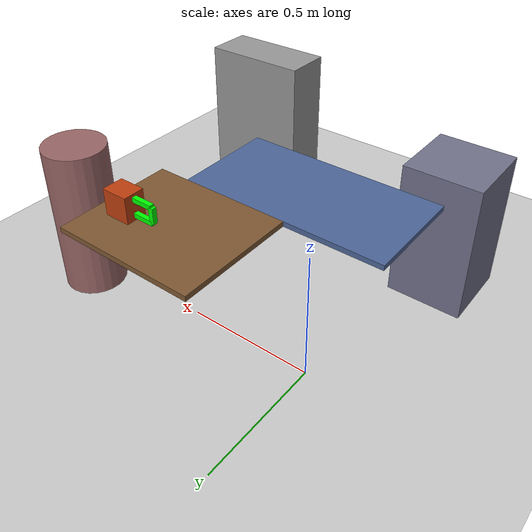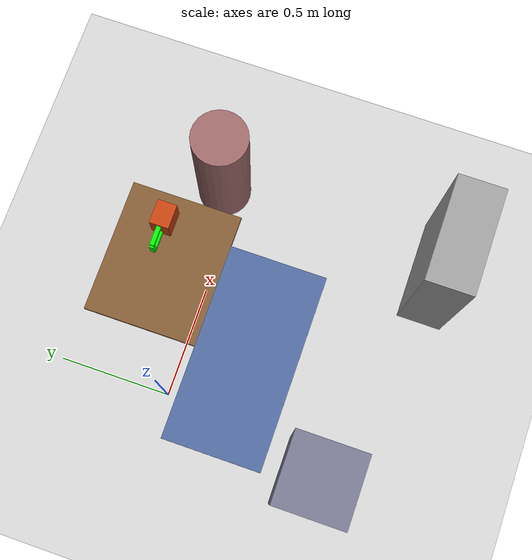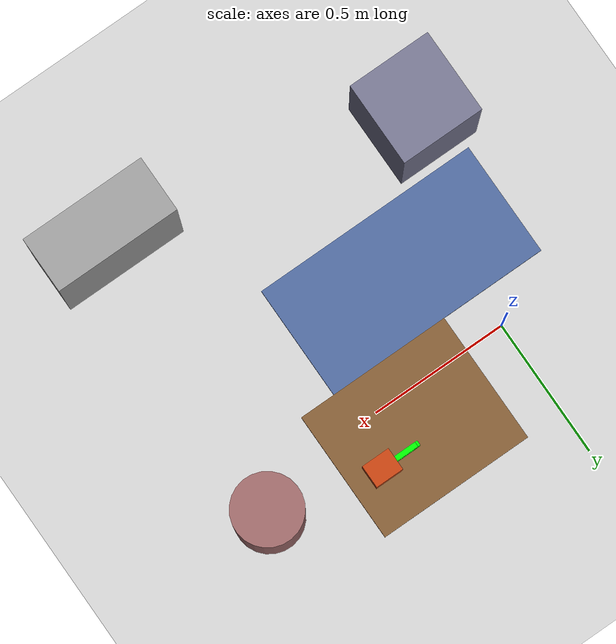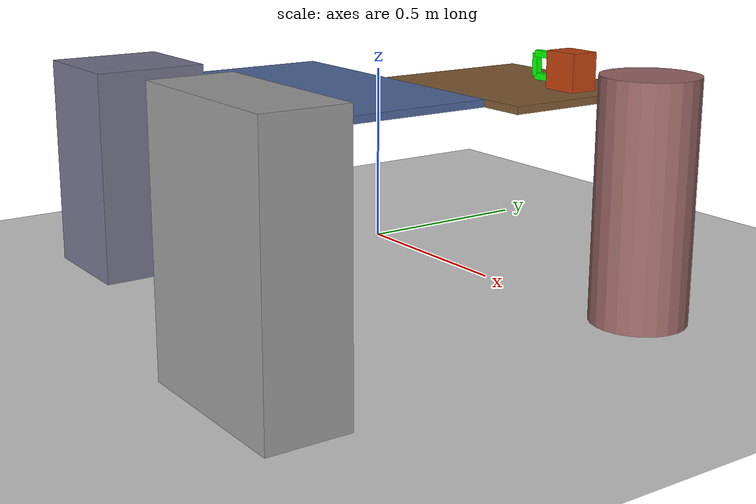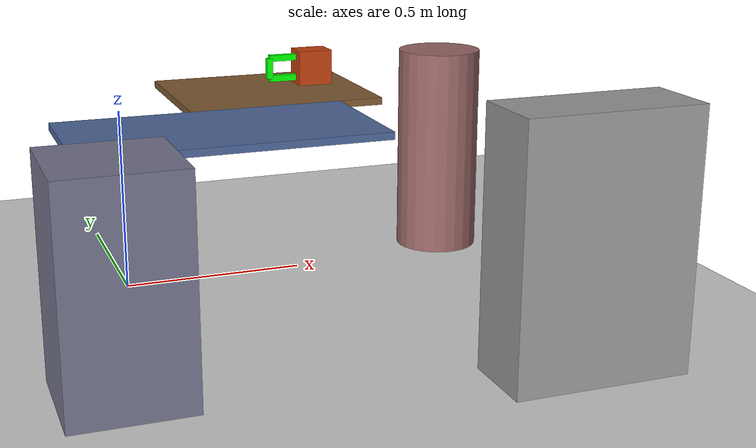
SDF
<?xml version="1.0"?>
<sdf version="1.6">
  <world name="pick_transport_obstacle">
    <include><uri>model://sun</uri></include>
    <include><uri>model://ground_plane</uri></include>
    <physics name="ode" type="ode">
      <max_step_size>0.005</max_step_size>
      <real_time_update_rate>200</real_time_update_rate>
      <ode><solver><type>quick</type><iters>100</iters><sor>1.0</sor></solver></ode>
    </physics>
    <gravity>0 0 -9.81</gravity>
    <plugin name="gazebo_ros_state" filename="libgazebo_ros_state.so">
      <ros><namespace>/gazebo</namespace></ros>
      <update_rate>50</update_rate>
    </plugin>

    <!-- Keep base task layout unchanged for safe comparison with the original scene. -->
    <model name="pickup_table">
      <static>true</static>
      <pose>0.45 0.13 0.496 0 0 0</pose>
      <link name="link">
        <collision name="collision"><geometry><box><size>0.55 0.46 0.02</size></box></geometry></collision>
        <visual name="visual"><geometry><box><size>0.55 0.46 0.02</size></box></geometry>
          <material><ambient>0.35 0.25 0.15 1</ambient><diffuse>0.5 0.35 0.2 1</diffuse></material></visual>
      </link>
    </model>

    <model name="drop_table">
      <static>true</static>
      <pose>0.20 -0.30 0.496 0 0 0</pose>
      <link name="link">
        <collision name="collision"><geometry><box><size>0.80 0.40 0.02</size></box></geometry></collision>
        <visual name="visual"><geometry><box><size>0.80 0.40 0.02</size></box></geometry>
          <material><ambient>0.2 0.25 0.35 1</ambient><diffuse>0.3 0.4 0.6 1</diffuse></material></visual>
      </link>
    </model>

    <model name="target_box">
      <static>false</static>
      <pose>0.61 0.18 0.556 0 0 0</pose>
      <link name="body">
        <inertial>
          <mass>0.20</mass>
          <inertia><ixx>0.0001093</ixx><iyy>0.0001333</iyy><izz>0.0001093</izz></inertia>
        </inertial>
        <collision name="body_collision">
          <surface>
            <friction><ode><mu>1.2</mu><mu2>1.2</mu2></ode></friction>
            <contact><ode><kp>300000</kp><kd>30</kd><max_vel>0.005</max_vel><min_depth>0.001</min_depth></ode></contact>
          </surface>
          <geometry><box><size>0.10 0.08 0.10</size></box></geometry>
        </collision>
        <visual name="body_visual">
          <geometry><box><size>0.10 0.08 0.10</size></box></geometry>
          <material><ambient>0.55 0.18 0.05 1</ambient><diffuse>0.75 0.25 0.06 1</diffuse></material>
        </visual>
      </link>
      <link name="handle">
        <pose>-0.130 0 0 0 0 0</pose>
        <inertial>
          <mass>0.01</mass>
          <inertia><ixx>0.000004</ixx><iyy>0.000004</iyy><izz>0.000001</izz></inertia>
        </inertial>
        <collision name="grip_collision">
          <surface>
            <friction><ode><mu>15.0</mu><mu2>15.0</mu2><slip1>0.0</slip1><slip2>0.0</slip2></ode></friction>
            <contact><ode><kp>300000</kp><kd>30</kd><max_vel>0.005</max_vel><min_depth>0.001</min_depth></ode></contact>
          </surface>
          <geometry><box><size>0.018 0.018 0.060</size></box></geometry>
        </collision>
        <collision name="upper_mount_collision"><pose>0.040 0 0.030 0 0 0</pose><geometry><box><size>0.080 0.018 0.018</size></box></geometry></collision>
        <collision name="lower_mount_collision"><pose>0.040 0 -0.030 0 0 0</pose><geometry><box><size>0.080 0.018 0.018</size></box></geometry></collision>
        <visual name="grip_visual">
          <geometry><box><size>0.018 0.018 0.060</size></box></geometry>
          <material><ambient>0 1 0 1</ambient><diffuse>0 1 0 1</diffuse></material>
        </visual>
        <visual name="upper_mount_visual"><pose>0.040 0 0.030 0 0 0</pose><geometry><box><size>0.080 0.018 0.018</size></box></geometry><material><ambient>0 1 0 1</ambient><diffuse>0 1 0 1</diffuse></material></visual>
        <visual name="lower_mount_visual"><pose>0.040 0 -0.030 0 0 0</pose><geometry><box><size>0.080 0.018 0.018</size></box></geometry><material><ambient>0 1 0 1</ambient><diffuse>0 1 0 1</diffuse></material></visual>
      </link>
      <joint name="body_to_handle" type="fixed"><parent>body</parent><child>handle</child></joint>
    </model>

    <!-- obstacle set: keep central routes free while adding绕行压力. -->
    <model name="obstacle_box_01">
      <static>true</static>
      <pose>0.90 -0.95 0.325 0 0 0</pose>
      <link name="body">
        <collision name="collision"><geometry><box><size>0.45 0.20 0.65</size></box></geometry></collision>
        <visual name="visual"><geometry><box><size>0.45 0.20 0.65</size></box></geometry>
          <material><ambient>0.35 0.35 0.35 1</ambient><diffuse>0.6 0.6 0.6 1</diffuse></material></visual>
      </link>
    </model>

    <model name="obstacle_box_02">
      <static>true</static>
      <pose>-0.15 -0.72 0.28 0 0 0</pose>
      <link name="body">
        <collision name="collision"><geometry><box><size>0.30 0.30 0.56</size></box></geometry></collision>
        <visual name="visual"><geometry><box><size>0.30 0.30 0.56</size></box></geometry>
          <material><ambient>0.3 0.3 0.4 1</ambient><diffuse>0.45 0.45 0.55 1</diffuse></material></visual>
      </link>
    </model>

    <model name="obstacle_pole">
      <static>true</static>
      <pose>0.98 0.08 0.30 0 0 0.08</pose>
      <link name="body">
        <collision name="collision"><geometry><cylinder><radius>0.12</radius><length>0.60</length></cylinder></geometry></collision>
        <visual name="visual"><geometry><cylinder><radius>0.12</radius><length>0.60</length></cylinder></geometry>
          <material><ambient>0.35 0.25 0.25 1</ambient><diffuse>0.6 0.4 0.4 1</diffuse></material></visual>
      </link>
    </model>
  </world>
</sdf>
